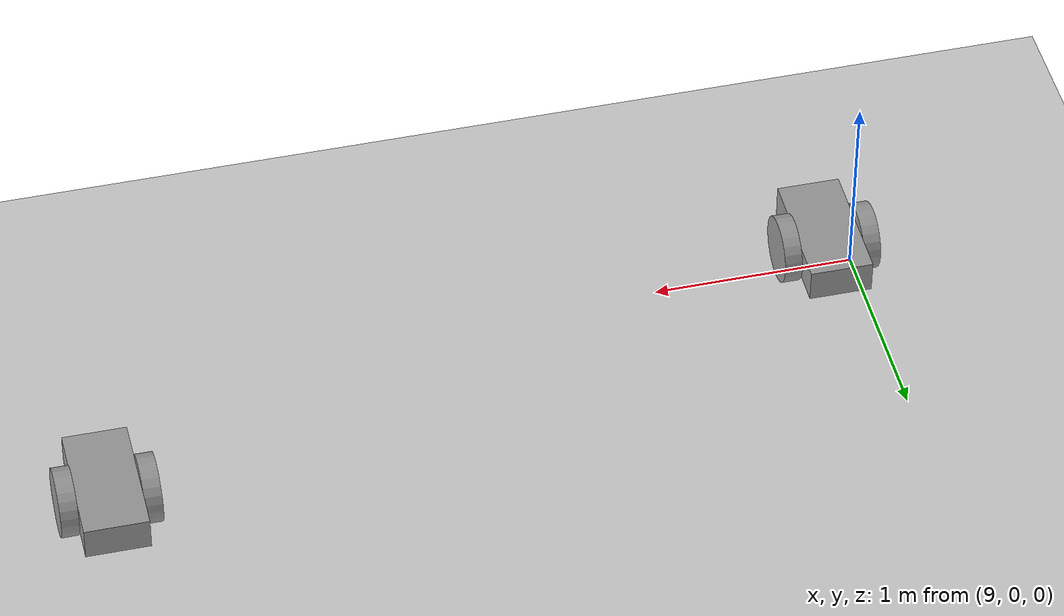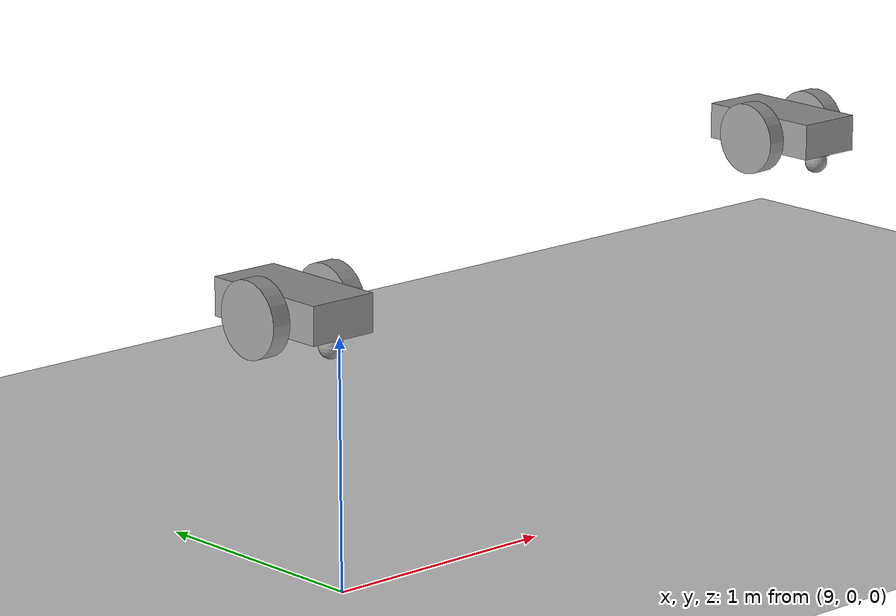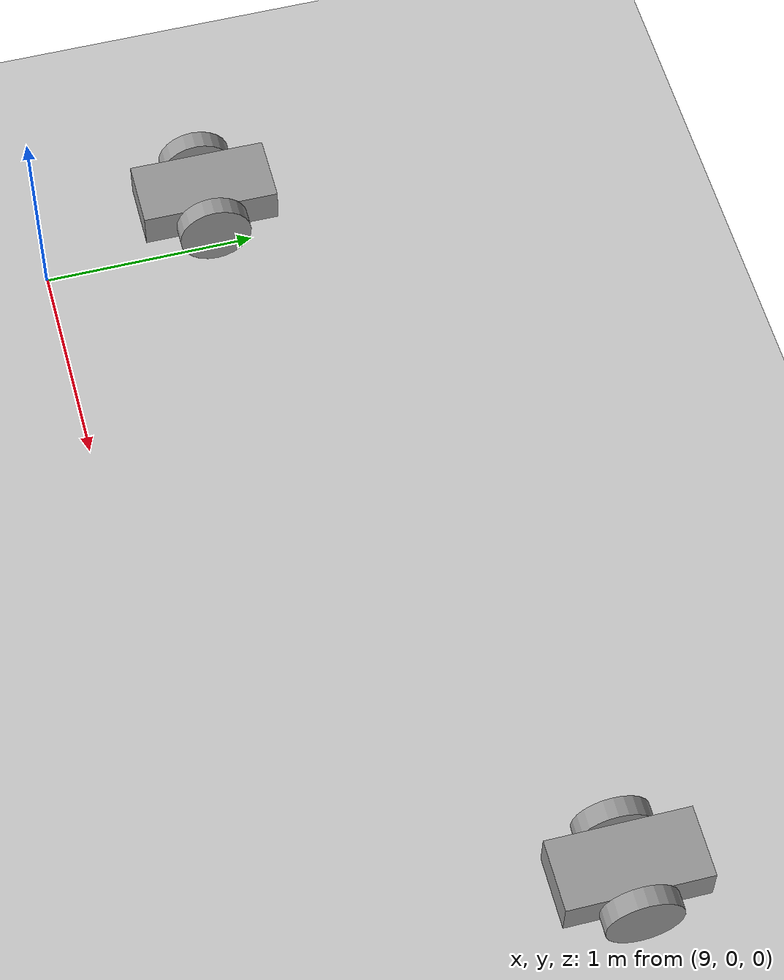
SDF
<sdf version="1.6">
 <world name="default">
  <model name="ground_plane">
   <static>1</static>
   <link name="link">
    <collision name="collision">
     <geometry><plane><normal>0 0 1</normal><size>100 100</size></plane></geometry>
     <surface>
      <contact><collide_bitmask>65535</collide_bitmask></contact>
      <friction><ode><mu>100</mu><mu2>50</mu2></ode></friction>
     </surface>
    </collision>
    <visual name="visual">
     <cast_shadows>0</cast_shadows>
     <geometry><plane><normal>0 0 1</normal><size>100 100</size></plane></geometry>
     <material>
      <script><uri>file://media/materials/scripts/gazebo.material</uri><name>Gazebo/Grey</name></script>
     </material>
    </visual>
   </link>
  </model>
  <model name="robot">
   <link name="link_1">
    <pose>0.05 0.005 0.04325 0 -0 0</pose>
    <inertial>
     <mass>1</mass>
     <inertia>
      <ixx>0.166667</ixx>
      <ixy>0</ixy>
      <ixz>0</ixz>
      <iyy>0.166667</iyy>
      <iyz>0</iyz>
      <izz>0.166667</izz>
     </inertia>
    </inertial>
    <visual name="visual">
     <geometry><box><size>0.6 0.3 0.16</size></box></geometry>
     <material>
      <lighting>1</lighting>
      <script><uri>file://media/materials/scripts/gazebo.material</uri><name>Gazebo/Grey</name></script>
      <shader type="pixel"><normal_map>__default__</normal_map></shader>
      <ambient>0.3 0.3 0.3 1</ambient>
      <diffuse>0.7 0.7 0.7 1</diffuse>
      <specular>0.01 0.01 0.01 1</specular>
      <emissive>0 0 0 1</emissive>
     </material>
    </visual>
    <collision name="collision">
     <geometry><box><size>0.6 0.3 0.16</size></box></geometry>
     <surface>
      <friction>
       <ode><mu>1</mu><mu2>1</mu2><fdir1>0 0 0</fdir1><slip1>0</slip1><slip2>0</slip2></ode>
       <torsional>
        <coefficient>1</coefficient>
        <patch_radius>0</patch_radius>
        <surface_radius>0</surface_radius>
        <use_patch_radius>1</use_patch_radius>
        <ode><slip>0</slip></ode>
       </torsional>
      </friction>
      <bounce><restitution_coefficient>0</restitution_coefficient><threshold>1e+06</threshold></bounce>
      <contact>
       <collide_without_contact>0</collide_without_contact>
       <collide_without_contact_bitmask>1</collide_without_contact_bitmask>
       <collide_bitmask>1</collide_bitmask>
       <ode>
        <soft_cfm>0</soft_cfm>
        <soft_erp>0.2</soft_erp>
        <kp>1e+13</kp>
        <kd>1</kd>
        <max_vel>0.01</max_vel>
        <min_depth>0</min_depth>
       </ode>
       <bullet>
        <split_impulse>1</split_impulse>
        <split_impulse_penetration_threshold>-0.01</split_impulse_penetration_threshold>
        <soft_cfm>0</soft_cfm>
        <soft_erp>0.2</soft_erp>
        <kp>1e+13</kp>
        <kd>1</kd>
       </bullet>
      </contact>
     </surface>
    </collision>
   </link>
   <link name="link_2">
    <pose>0.05 -0.186515 0.02225 1.5707 -0 0</pose>
    <inertial>
     <mass>1</mass>
     <inertia><ixx>0.145833</ixx><ixy>0</ixy><ixz>0</ixz><iyy>0.145833</iyy><iyz>0</iyz><izz>0.125</izz></inertia>
    </inertial>
    <visual name="visual">
     <geometry><cylinder><radius>0.16</radius><length>0.083</length></cylinder></geometry>
     <material>
      <lighting>1</lighting>
      <script><uri>file://media/materials/scripts/gazebo.material</uri><name>Gazebo/Grey</name></script>
      <shader type="pixel"><normal_map>__default__</normal_map></shader>
      <ambient>0.3 0.3 0.3 1</ambient>
      <diffuse>0.7 0.7 0.7 1</diffuse>
      <specular>0.01 0.01 0.01 1</specular>
      <emissive>0 0 0 1</emissive>
     </material>
    </visual>
    <collision name="collision">
     <geometry><cylinder><radius>0.16</radius><length>0.083</length></cylinder></geometry>
     <surface>
      <friction>
       <ode><mu>1</mu><mu2>1</mu2><fdir1>0 0 0</fdir1><slip1>0</slip1><slip2>0</slip2></ode>
       <torsional>
        <coefficient>1</coefficient>
        <patch_radius>0</patch_radius>
        <surface_radius>0</surface_radius>
        <use_patch_radius>1</use_patch_radius>
        <ode><slip>0</slip></ode>
       </torsional>
      </friction>
      <bounce><restitution_coefficient>0</restitution_coefficient><threshold>1e+06</threshold></bounce>
      <contact>
       <collide_without_contact>0</collide_without_contact>
       <collide_without_contact_bitmask>1</collide_without_contact_bitmask>
       <collide_bitmask>1</collide_bitmask>
       <ode>
        <soft_cfm>0</soft_cfm>
        <soft_erp>0.2</soft_erp>
        <kp>1e+13</kp>
        <kd>1</kd>
        <max_vel>0.01</max_vel>
        <min_depth>0</min_depth>
       </ode>
       <bullet>
        <split_impulse>1</split_impulse>
        <split_impulse_penetration_threshold>-0.01</split_impulse_penetration_threshold>
        <soft_cfm>0</soft_cfm>
        <soft_erp>0.2</soft_erp>
        <kp>1e+13</kp>
        <kd>1</kd>
       </bullet>
      </contact>
     </surface>
    </collision>
   </link>
   <link name="link_2_clone">
    <pose>0.05 0.196515 0.02225 1.5707 -0 0</pose>
    <inertial>
     <mass>1</mass>
     <inertia><ixx>0.145833</ixx><ixy>0</ixy><ixz>0</ixz><iyy>0.145833</iyy><iyz>0</iyz><izz>0.125</izz></inertia>
    </inertial>
    <visual name="visual">
     <geometry><cylinder><radius>0.16</radius><length>0.083</length></cylinder></geometry>
     <material>
      <lighting>1</lighting>
      <script><uri>file://media/materials/scripts/gazebo.material</uri><name>Gazebo/Grey</name></script>
      <shader type="pixel"><normal_map>__default__</normal_map></shader>
      <ambient>0.3 0.3 0.3 1</ambient>
      <diffuse>0.7 0.7 0.7 1</diffuse>
      <specular>0.01 0.01 0.01 1</specular>
      <emissive>0 0 0 1</emissive>
     </material>
    </visual>
    <collision name="collision">
     <geometry><cylinder><radius>0.16</radius><length>0.083</length></cylinder></geometry>
     <surface>
      <friction>
       <ode><mu>1</mu><mu2>1</mu2><fdir1>0 0 0</fdir1><slip1>0</slip1><slip2>0</slip2></ode>
       <torsional>
        <coefficient>1</coefficient>
        <patch_radius>0</patch_radius>
        <surface_radius>0</surface_radius>
        <use_patch_radius>1</use_patch_radius>
        <ode><slip>0</slip></ode>
       </torsional>
      </friction>
      <bounce><restitution_coefficient>0</restitution_coefficient><threshold>1e+06</threshold></bounce>
      <contact>
       <collide_without_contact>0</collide_without_contact>
       <collide_without_contact_bitmask>1</collide_without_contact_bitmask>
       <collide_bitmask>1</collide_bitmask>
       <ode>
        <soft_cfm>0</soft_cfm>
        <soft_erp>0.2</soft_erp>
        <kp>1e+13</kp>
        <kd>1</kd>
        <max_vel>0.01</max_vel>
        <min_depth>0</min_depth>
       </ode>
       <bullet>
        <split_impulse>1</split_impulse>
        <split_impulse_penetration_threshold>-0.01</split_impulse_penetration_threshold>
        <soft_cfm>0</soft_cfm>
        <soft_erp>0.2</soft_erp>
        <kp>1e+13</kp>
        <kd>1</kd>
       </bullet>
      </contact>
     </surface>
    </collision>
   </link>
   <link name="link_3">
    <pose>-0.15 -0.015 -0.08775 0 -0 0</pose>
    <inertial>
     <mass>1</mass>
     <inertia><ixx>0.1</ixx><ixy>0</ixy><ixz>0</ixz><iyy>0.1</iyy><iyz>0</iyz><izz>0.1</izz></inertia>
    </inertial>
    <visual name="visual">
     <geometry><sphere><radius>0.05</radius></sphere></geometry>
     <material>
      <lighting>1</lighting>
      <script><uri>file://media/materials/scripts/gazebo.material</uri><name>Gazebo/Grey</name></script>
      <shader type="pixel"><normal_map>__default__</normal_map></shader>
      <ambient>0.3 0.3 0.3 1</ambient>
      <diffuse>0.7 0.7 0.7 1</diffuse>
      <specular>0.01 0.01 0.01 1</specular>
      <emissive>0 0 0 1</emissive>
     </material>
    </visual>
    <collision name="collision">
     <geometry><sphere><radius>0.05</radius></sphere></geometry>
     <surface>
      <friction>
       <ode><mu>1</mu><mu2>1</mu2><fdir1>0 0 0</fdir1><slip1>0</slip1><slip2>0</slip2></ode>
       <torsional>
        <coefficient>1</coefficient>
        <patch_radius>0</patch_radius>
        <surface_radius>0</surface_radius>
        <use_patch_radius>1</use_patch_radius>
        <ode><slip>0</slip></ode>
       </torsional>
      </friction>
      <bounce><restitution_coefficient>0</restitution_coefficient><threshold>1e+06</threshold></bounce>
      <contact>
       <collide_without_contact>0</collide_without_contact>
       <collide_without_contact_bitmask>1</collide_without_contact_bitmask>
       <collide_bitmask>1</collide_bitmask>
       <ode>
        <soft_cfm>0</soft_cfm>
        <soft_erp>0.2</soft_erp>
        <kp>1e+13</kp>
        <kd>1</kd>
        <max_vel>0.01</max_vel>
        <min_depth>0</min_depth>
       </ode>
       <bullet>
        <split_impulse>1</split_impulse>
        <split_impulse_penetration_threshold>-0.01</split_impulse_penetration_threshold>
        <soft_cfm>0</soft_cfm>
        <soft_erp>0.2</soft_erp>
        <kp>1e+13</kp>
        <kd>1</kd>
       </bullet>
      </contact>
     </surface>
    </collision>
   </link>
   <joint name="link_1_JOINT_0" type="revolute">
    <parent>link_1</parent>
    <child>link_2</child>
    <axis>
     <xyz>0 0 1</xyz>
     <use_parent_model_frame>0</use_parent_model_frame>
     <limit>
      <lower>-1.79769e+308</lower>
      <upper>1.79769e+308</upper>
      <effort>-1</effort>
      <velocity>-1</velocity>
     </limit>
     <dynamics>
      <spring_reference>0</spring_reference>
      <spring_stiffness>0</spring_stiffness>
      <damping>0</damping>
     </dynamics>
    </axis>
    <physics>
     <ode><limit><cfm>0</cfm><erp>0.2</erp></limit><suspension><cfm>0</cfm><erp>0.2</erp></suspension></ode>
    </physics>
   </joint>
   <joint name="link_1_JOINT_1" type="revolute">
    <parent>link_1</parent>
    <child>link_2_clone</child>
    <axis>
     <xyz>0 0 1</xyz>
     <use_parent_model_frame>0</use_parent_model_frame>
     <limit>
      <lower>-1.79769e+308</lower>
      <upper>1.79769e+308</upper>
      <effort>-1</effort>
      <velocity>-1</velocity>
     </limit>
     <dynamics>
      <spring_reference>0</spring_reference>
      <spring_stiffness>0</spring_stiffness>
      <damping>0</damping>
     </dynamics>
    </axis>
    <physics>
     <ode><limit><cfm>0</cfm><erp>0.2</erp></limit><suspension><cfm>0</cfm><erp>0.2</erp></suspension></ode>
    </physics>
   </joint>
   <joint name="link_1_JOINT_4" type="ball">
    <parent>link_1</parent>
    <child>link_3</child>
    <physics>
     <ode><limit><cfm>0</cfm><erp>0.2</erp></limit><suspension><cfm>0</cfm><erp>0.2</erp></suspension></ode>
    </physics>
   </joint>
   <static>0</static>
   <pose>12.9861 1.50433 0.870905 -4e-05 -0.002517 1.56528</pose>
  </model>
  <model name="robot_0">
   <link name="link_1">
    <pose>0.05 0.005 0.04325 0 -0 0</pose>
    <inertial>
     <mass>1</mass>
     <inertia>
      <ixx>0.166667</ixx>
      <ixy>0</ixy>
      <ixz>0</ixz>
      <iyy>0.166667</iyy>
      <iyz>0</iyz>
      <izz>0.166667</izz>
     </inertia>
    </inertial>
    <visual name="visual">
     <geometry><box><size>0.6 0.3 0.16</size></box></geometry>
     <material>
      <lighting>1</lighting>
      <script><uri>file://media/materials/scripts/gazebo.material</uri><name>Gazebo/Grey</name></script>
      <shader type="pixel"><normal_map>__default__</normal_map></shader>
      <ambient>0.3 0.3 0.3 1</ambient>
      <diffuse>0.7 0.7 0.7 1</diffuse>
      <specular>0.01 0.01 0.01 1</specular>
      <emissive>0 0 0 1</emissive>
     </material>
    </visual>
    <collision name="collision">
     <geometry><box><size>0.6 0.3 0.16</size></box></geometry>
     <surface>
      <friction>
       <ode><mu>1</mu><mu2>1</mu2><fdir1>0 0 0</fdir1><slip1>0</slip1><slip2>0</slip2></ode>
       <torsional>
        <coefficient>1</coefficient>
        <patch_radius>0</patch_radius>
        <surface_radius>0</surface_radius>
        <use_patch_radius>1</use_patch_radius>
        <ode><slip>0</slip></ode>
       </torsional>
      </friction>
      <bounce><restitution_coefficient>0</restitution_coefficient><threshold>1e+06</threshold></bounce>
      <contact>
       <collide_without_contact>0</collide_without_contact>
       <collide_without_contact_bitmask>1</collide_without_contact_bitmask>
       <collide_bitmask>1</collide_bitmask>
       <ode>
        <soft_cfm>0</soft_cfm>
        <soft_erp>0.2</soft_erp>
        <kp>1e+13</kp>
        <kd>1</kd>
        <max_vel>0.01</max_vel>
        <min_depth>0</min_depth>
       </ode>
       <bullet>
        <split_impulse>1</split_impulse>
        <split_impulse_penetration_threshold>-0.01</split_impulse_penetration_threshold>
        <soft_cfm>0</soft_cfm>
        <soft_erp>0.2</soft_erp>
        <kp>1e+13</kp>
        <kd>1</kd>
       </bullet>
      </contact>
     </surface>
    </collision>
   </link>
   <link name="link_2">
    <pose>0.05 -0.186515 0.02225 1.5707 -0 0</pose>
    <inertial>
     <mass>1</mass>
     <inertia><ixx>0.145833</ixx><ixy>0</ixy><ixz>0</ixz><iyy>0.145833</iyy><iyz>0</iyz><izz>0.125</izz></inertia>
    </inertial>
    <visual name="visual">
     <geometry><cylinder><radius>0.16</radius><length>0.083</length></cylinder></geometry>
     <material>
      <lighting>1</lighting>
      <script><uri>file://media/materials/scripts/gazebo.material</uri><name>Gazebo/Grey</name></script>
      <shader type="pixel"><normal_map>__default__</normal_map></shader>
      <ambient>0.3 0.3 0.3 1</ambient>
      <diffuse>0.7 0.7 0.7 1</diffuse>
      <specular>0.01 0.01 0.01 1</specular>
      <emissive>0 0 0 1</emissive>
     </material>
    </visual>
    <collision name="collision">
     <geometry><cylinder><radius>0.16</radius><length>0.083</length></cylinder></geometry>
     <surface>
      <friction>
       <ode><mu>1</mu><mu2>1</mu2><fdir1>0 0 0</fdir1><slip1>0</slip1><slip2>0</slip2></ode>
       <torsional>
        <coefficient>1</coefficient>
        <patch_radius>0</patch_radius>
        <surface_radius>0</surface_radius>
        <use_patch_radius>1</use_patch_radius>
        <ode><slip>0</slip></ode>
       </torsional>
      </friction>
      <bounce><restitution_coefficient>0</restitution_coefficient><threshold>1e+06</threshold></bounce>
      <contact>
       <collide_without_contact>0</collide_without_contact>
       <collide_without_contact_bitmask>1</collide_without_contact_bitmask>
       <collide_bitmask>1</collide_bitmask>
       <ode>
        <soft_cfm>0</soft_cfm>
        <soft_erp>0.2</soft_erp>
        <kp>1e+13</kp>
        <kd>1</kd>
        <max_vel>0.01</max_vel>
        <min_depth>0</min_depth>
       </ode>
       <bullet>
        <split_impulse>1</split_impulse>
        <split_impulse_penetration_threshold>-0.01</split_impulse_penetration_threshold>
        <soft_cfm>0</soft_cfm>
        <soft_erp>0.2</soft_erp>
        <kp>1e+13</kp>
        <kd>1</kd>
       </bullet>
      </contact>
     </surface>
    </collision>
   </link>
   <link name="link_2_clone">
    <pose>0.05 0.196515 0.02225 1.5707 -0 0</pose>
    <inertial>
     <mass>1</mass>
     <inertia><ixx>0.145833</ixx><ixy>0</ixy><ixz>0</ixz><iyy>0.145833</iyy><iyz>0</iyz><izz>0.125</izz></inertia>
    </inertial>
    <visual name="visual">
     <geometry><cylinder><radius>0.16</radius><length>0.083</length></cylinder></geometry>
     <material>
      <lighting>1</lighting>
      <script><uri>file://media/materials/scripts/gazebo.material</uri><name>Gazebo/Grey</name></script>
      <shader type="pixel"><normal_map>__default__</normal_map></shader>
      <ambient>0.3 0.3 0.3 1</ambient>
      <diffuse>0.7 0.7 0.7 1</diffuse>
      <specular>0.01 0.01 0.01 1</specular>
      <emissive>0 0 0 1</emissive>
     </material>
    </visual>
    <collision name="collision">
     <geometry><cylinder><radius>0.16</radius><length>0.083</length></cylinder></geometry>
     <surface>
      <friction>
       <ode><mu>1</mu><mu2>1</mu2><fdir1>0 0 0</fdir1><slip1>0</slip1><slip2>0</slip2></ode>
       <torsional>
        <coefficient>1</coefficient>
        <patch_radius>0</patch_radius>
        <surface_radius>0</surface_radius>
        <use_patch_radius>1</use_patch_radius>
        <ode><slip>0</slip></ode>
       </torsional>
      </friction>
      <bounce><restitution_coefficient>0</restitution_coefficient><threshold>1e+06</threshold></bounce>
      <contact>
       <collide_without_contact>0</collide_without_contact>
       <collide_without_contact_bitmask>1</collide_without_contact_bitmask>
       <collide_bitmask>1</collide_bitmask>
       <ode>
        <soft_cfm>0</soft_cfm>
        <soft_erp>0.2</soft_erp>
        <kp>1e+13</kp>
        <kd>1</kd>
        <max_vel>0.01</max_vel>
        <min_depth>0</min_depth>
       </ode>
       <bullet>
        <split_impulse>1</split_impulse>
        <split_impulse_penetration_threshold>-0.01</split_impulse_penetration_threshold>
        <soft_cfm>0</soft_cfm>
        <soft_erp>0.2</soft_erp>
        <kp>1e+13</kp>
        <kd>1</kd>
       </bullet>
      </contact>
     </surface>
    </collision>
   </link>
   <link name="link_3">
    <pose>-0.15 -0.015 -0.08775 0 -0 0</pose>
    <inertial>
     <mass>1</mass>
     <inertia><ixx>0.1</ixx><ixy>0</ixy><ixz>0</ixz><iyy>0.1</iyy><iyz>0</iyz><izz>0.1</izz></inertia>
    </inertial>
    <visual name="visual">
     <geometry><sphere><radius>0.05</radius></sphere></geometry>
     <material>
      <lighting>1</lighting>
      <script><uri>file://media/materials/scripts/gazebo.material</uri><name>Gazebo/Grey</name></script>
      <shader type="pixel"><normal_map>__default__</normal_map></shader>
      <ambient>0.3 0.3 0.3 1</ambient>
      <diffuse>0.7 0.7 0.7 1</diffuse>
      <specular>0.01 0.01 0.01 1</specular>
      <emissive>0 0 0 1</emissive>
     </material>
    </visual>
    <collision name="collision">
     <geometry><sphere><radius>0.05</radius></sphere></geometry>
     <surface>
      <friction>
       <ode><mu>1</mu><mu2>1</mu2><fdir1>0 0 0</fdir1><slip1>0</slip1><slip2>0</slip2></ode>
       <torsional>
        <coefficient>1</coefficient>
        <patch_radius>0</patch_radius>
        <surface_radius>0</surface_radius>
        <use_patch_radius>1</use_patch_radius>
        <ode><slip>0</slip></ode>
       </torsional>
      </friction>
      <bounce><restitution_coefficient>0</restitution_coefficient><threshold>1e+06</threshold></bounce>
      <contact>
       <collide_without_contact>0</collide_without_contact>
       <collide_without_contact_bitmask>1</collide_without_contact_bitmask>
       <collide_bitmask>1</collide_bitmask>
       <ode>
        <soft_cfm>0</soft_cfm>
        <soft_erp>0.2</soft_erp>
        <kp>1e+13</kp>
        <kd>1</kd>
        <max_vel>0.01</max_vel>
        <min_depth>0</min_depth>
       </ode>
       <bullet>
        <split_impulse>1</split_impulse>
        <split_impulse_penetration_threshold>-0.01</split_impulse_penetration_threshold>
        <soft_cfm>0</soft_cfm>
        <soft_erp>0.2</soft_erp>
        <kp>1e+13</kp>
        <kd>1</kd>
       </bullet>
      </contact>
     </surface>
    </collision>
   </link>
   <joint name="link_1_JOINT_0" type="revolute">
    <parent>link_1</parent>
    <child>link_2</child>
    <axis>
     <xyz>0 0 1</xyz>
     <use_parent_model_frame>0</use_parent_model_frame>
     <limit>
      <lower>-1.79769e+308</lower>
      <upper>1.79769e+308</upper>
      <effort>-1</effort>
      <velocity>-1</velocity>
     </limit>
     <dynamics>
      <spring_reference>0</spring_reference>
      <spring_stiffness>0</spring_stiffness>
      <damping>0</damping>
     </dynamics>
    </axis>
    <physics>
     <ode><limit><cfm>0</cfm><erp>0.2</erp></limit><suspension><cfm>0</cfm><erp>0.2</erp></suspension></ode>
    </physics>
   </joint>
   <joint name="link_1_JOINT_1" type="revolute">
    <parent>link_1</parent>
    <child>link_2_clone</child>
    <axis>
     <xyz>0 0 1</xyz>
     <use_parent_model_frame>0</use_parent_model_frame>
     <limit>
      <lower>-1.79769e+308</lower>
      <upper>1.79769e+308</upper>
      <effort>-1</effort>
      <velocity>-1</velocity>
     </limit>
     <dynamics>
      <spring_reference>0</spring_reference>
      <spring_stiffness>0</spring_stiffness>
      <damping>0</damping>
     </dynamics>
    </axis>
    <physics>
     <ode><limit><cfm>0</cfm><erp>0.2</erp></limit><suspension><cfm>0</cfm><erp>0.2</erp></suspension></ode>
    </physics>
   </joint>
   <joint name="link_1_JOINT_4" type="ball">
    <parent>link_1</parent>
    <child>link_3</child>
    <physics>
     <ode><limit><cfm>0</cfm><erp>0.2</erp></limit><suspension><cfm>0</cfm><erp>0.2</erp></suspension></ode>
    </physics>
   </joint>
   <static>0</static>
   <pose>9.38791 0.670726 0.870905 -3.9e-05 -0.002517 1.56472</pose>
  </model>
 </world>
</sdf>
